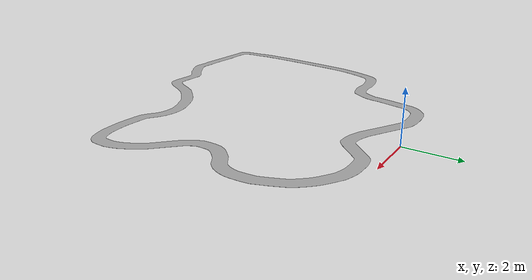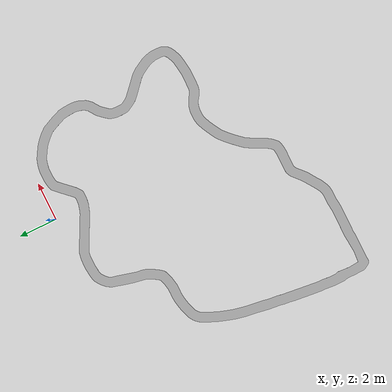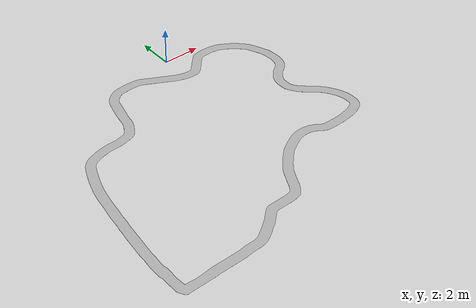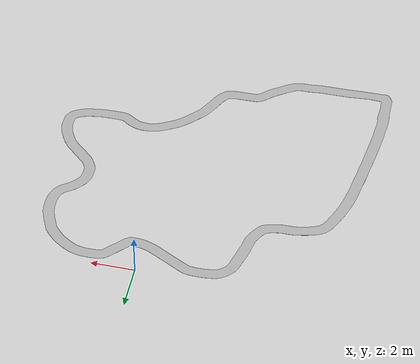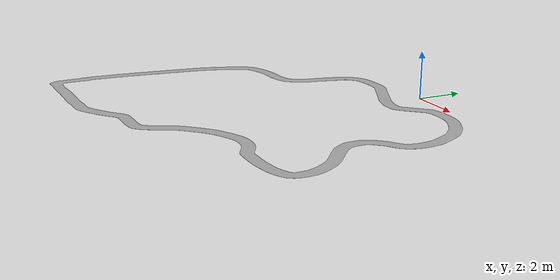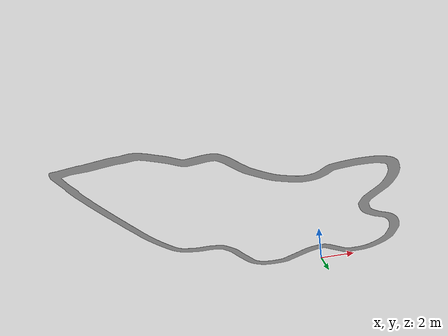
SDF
<?xml version="1.0" ?>
<sdf version="1.6">
  <model name="tinker">
    <static>true</static>  <!-- Set to false if it should move -->

    <link name="tinker_link">
      <visual name="tinker_visual">
        <geometry>
          <mesh>
            <uri>model://tinker/meshes/tinker.obj</uri>
            <scale>0.25 0.25 0.25</scale>  <!-- Adjust scale if needed -->
          </mesh>
        </geometry>
        <material>
          <script>
            <uri>model://tinker/meshes/obj.mtl</uri>
            <name>tinker_material</name>
          </script>
        </material>
      </visual>

      <collision name="tinker_collision">
        <geometry>
          <mesh>
            <uri>model://tinker/meshes/tinker.obj</uri>
            <scale>0.25 0.25 0.25</scale>
          </mesh>
        </geometry>
          <laser_retro>200</laser_retro>
          <surface>
        <contact>
          <collide_without_contact>true</collide_without_contact>
          <collide_without_contact_bitmask>0x01</collide_without_contact_bitmask>
        </contact>
      </surface>  <!-- Reflection intensity -->
      </collision>
    </link>
  </model>
</sdf>
